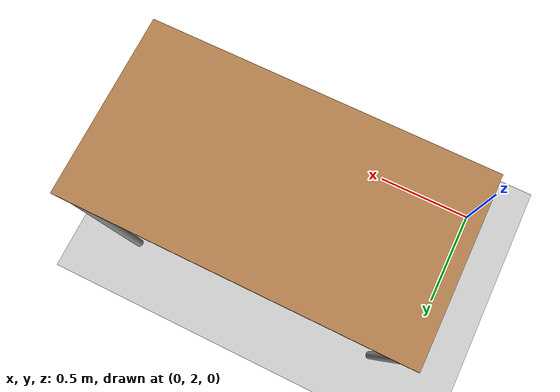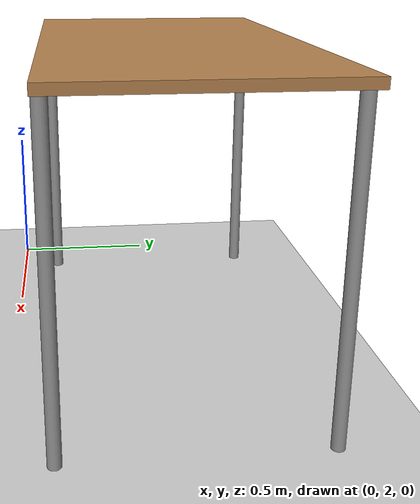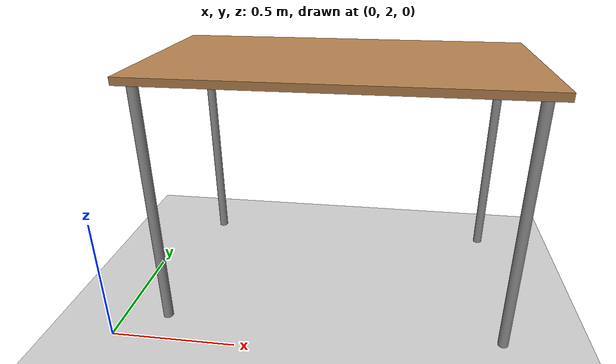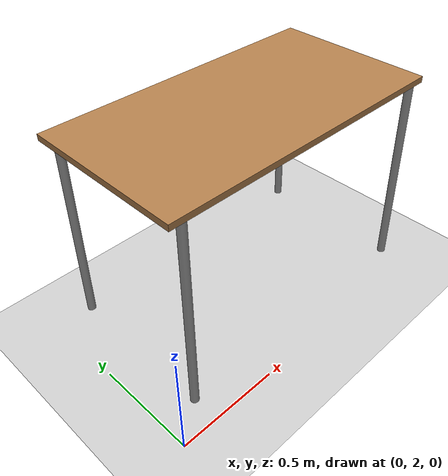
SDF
<sdf version="1.7">
 <world name="default">
  <physics type="ode">
   <real_time_update_rate>500</real_time_update_rate>
   <max_step_size>0.002</max_step_size>
   <ode>
    <solver>
     <type>quick</type>
     <iters>100</iters>
     <sor>1.3</sor>
     <use_dynamic_moi_rescaling>0</use_dynamic_moi_rescaling>
    </solver>
    <constraints>
     <cfm>0.0001</cfm>
     <erp>0.2</erp>
     <contact_max_correcting_vel>100</contact_max_correcting_vel>
     <contact_surface_layer>0.001</contact_surface_layer>
    </constraints>
   </ode>
   <real_time_factor>1</real_time_factor>
  </physics>
  <light name="sun" type="directional">
   <pose>0 0 10 0 -0 0</pose>
   <diffuse>0.8 0.8 0.8 1</diffuse>
   <specular>0.2 0.2 0.2 1</specular>
   <attenuation>
    <range>1000</range>
    <constant>0.9</constant>
    <linear>0.01</linear>
    <quadratic>0.001</quadratic>
   </attenuation>
   <direction>-0.5 0.1 -0.9</direction>
   <spot><inner_angle>0</inner_angle><outer_angle>0</outer_angle><falloff>0</falloff></spot>
  </light>
  <model name="ground_plane">
   <static>1</static>
   <link name="link">
    <collision name="collision">
     <geometry><plane><normal>0 0 1</normal><size>100 100</size></plane></geometry>
     <surface>
      <contact><collide_bitmask>65535</collide_bitmask></contact>
      <friction><ode><mu>100</mu><mu2>50</mu2></ode></friction>
     </surface>
    </collision>
    <visual name="visual">
     <cast_shadows>0</cast_shadows>
     <geometry><plane><normal>0 0 1</normal><size>100 100</size></plane></geometry>
     <material>
      <script><uri>file://media/materials/scripts/gazebo.material</uri><name>Gazebo/Grey</name></script>
     </material>
    </visual>
   </link>
  </model>
  <gravity>0 0 -9.8</gravity>
  <magnetic_field>6e-06 2.3e-05 -4.2e-05</magnetic_field>
  <atmosphere type="adiabatic"/>
  <scene><ambient>0.4 0.4 0.4 1</ambient><background>0.7 0.7 0.7 1</background><shadows>1</shadows></scene>
  <spherical_coordinates>
   <surface_model>EARTH_WGS84</surface_model>
   <latitude_deg>0</latitude_deg>
   <longitude_deg>0</longitude_deg>
   <elevation>0</elevation>
   <heading_deg>0</heading_deg>
  </spherical_coordinates>
  <model name="table_0">
   <static>1</static>
   <link name="link">
    <collision name="surface">
     <pose>0 0 1 0 -0 0</pose>
     <geometry><box><size>1.5 0.8 0.03</size></box></geometry>
     <surface><friction><ode><mu>0.6</mu><mu2>0.6</mu2></ode></friction></surface>
    </collision>
    <visual name="visual1">
     <pose>0 0 1 0 -0 0</pose>
     <geometry><box><size>1.5 0.8 0.03</size></box></geometry>
     <material>
      <script><uri>file://media/materials/scripts/gazebo.material</uri><name>Gazebo/Wood</name></script>
     </material>
    </visual>
    <collision name="front_left_leg">
     <pose>0.68 0.38 0.5 0 -0 0</pose>
     <geometry><cylinder><radius>0.02</radius><length>1</length></cylinder></geometry>
    </collision>
    <visual name="front_left_leg">
     <pose>0.68 0.38 0.5 0 -0 0</pose>
     <geometry><cylinder><radius>0.02</radius><length>1</length></cylinder></geometry>
     <material>
      <script><uri>file://media/materials/scripts/gazebo.material</uri><name>Gazebo/Grey</name></script>
     </material>
    </visual>
    <collision name="front_right_leg">
     <pose>0.68 -0.38 0.5 0 -0 0</pose>
     <geometry><cylinder><radius>0.02</radius><length>1</length></cylinder></geometry>
    </collision>
    <visual name="front_right_leg">
     <pose>0.68 -0.38 0.5 0 -0 0</pose>
     <geometry><cylinder><radius>0.02</radius><length>1</length></cylinder></geometry>
     <material>
      <script><uri>file://media/materials/scripts/gazebo.material</uri><name>Gazebo/Grey</name></script>
     </material>
    </visual>
    <collision name="back_right_leg">
     <pose>-0.68 -0.38 0.5 0 -0 0</pose>
     <geometry><cylinder><radius>0.02</radius><length>1</length></cylinder></geometry>
    </collision>
    <visual name="back_right_leg">
     <pose>-0.68 -0.38 0.5 0 -0 0</pose>
     <geometry><cylinder><radius>0.02</radius><length>1</length></cylinder></geometry>
     <material>
      <script><uri>file://media/materials/scripts/gazebo.material</uri><name>Gazebo/Grey</name></script>
     </material>
    </visual>
    <collision name="back_left_leg">
     <pose>-0.68 0.38 0.5 0 -0 0</pose>
     <geometry><cylinder><radius>0.02</radius><length>1</length></cylinder></geometry>
    </collision>
    <visual name="back_left_leg">
     <pose>-0.68 0.38 0.5 0 -0 0</pose>
     <geometry><cylinder><radius>0.02</radius><length>1</length></cylinder></geometry>
     <material>
      <script><uri>file://media/materials/scripts/gazebo.material</uri><name>Gazebo/Grey</name></script>
     </material>
    </visual>
   </link>
   <pose>0.858498 2.51584 0 0 -0 0</pose>
  </model>
 </world>
</sdf>
